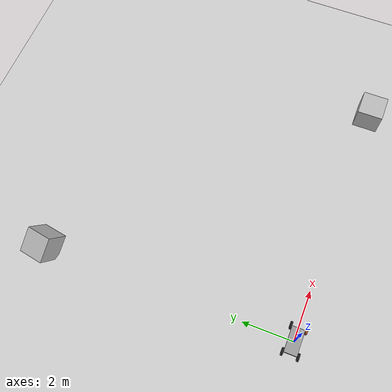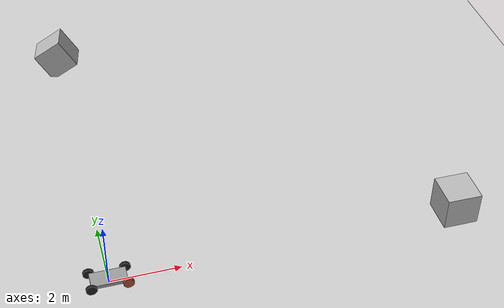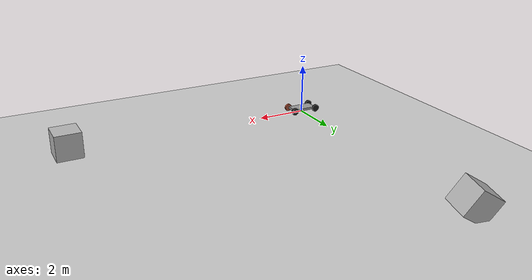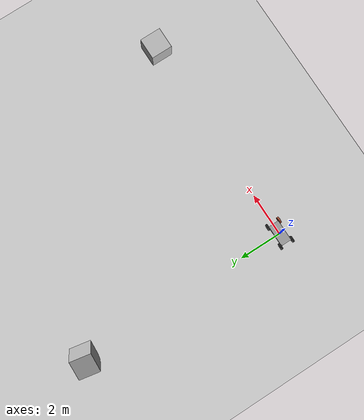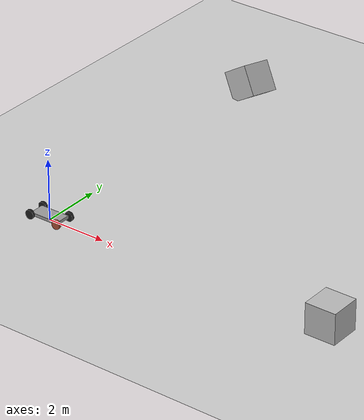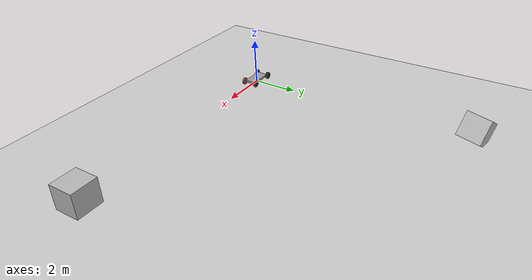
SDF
<?xml version="1.0"?>
<sdf version="1.4">
  <world name="default">

    <!-- Ground Plane -->
    <include>
      <uri>model://ground_plane</uri>
    </include>

    <include>
      <uri>model://sun</uri>
    </include>

    <model name="box">
      <pose>0 10 0.5 25 12 69</pose>
      <link name="link">
        <collision name="collision">
          <geometry>
            <box>
              <size>1 1 1</size>
            </box>
          </geometry>
        </collision>

        <visual name="visual">
          <geometry>
            <box>
              <size>1 1 1</size>
            </box>
          </geometry>
        </visual>
      </link>

      <plugin name="model_push" filename="build/libmodel_push.so"/>
    </model>

    <model name="box2">
      <pose>10 0 0.5 0 0 0</pose>
      <link name="link">
        <collision name="collision">
          <geometry>
            <box>
              <size>1 1 1</size>
            </box>
          </geometry>
        </collision>

        <visual name="visual">
          <geometry>
            <box>
              <size>1 1 1</size>
            </box>
          </geometry>
        </visual>
      </link>

      <plugin name="model_pull" filename="build/libmodel_pull.so"/>
    </model>

    <model name="cart_front_steer">
        <link name="chassis">
            <pose>0 0 0.15  0 0 0</pose>
            <inertial>
                <pose>0.1 0 0  0 0 0</pose>
                <mass>10</mass>
                <inertia>
                    <ixx>0.21666666666666667</ixx>
                    <iyy>0.8416666666666667</iyy>
                    <izz>1.0416666666666667</izz>
                    <ixy>0</ixy>
                    <ixz>0</ixz>
                    <iyz>0</iyz>
                </inertia>
            </inertial>
            <collision name="collision">
                <geometry>
                    <box>
                        <size>1.0 0.5 0.1</size>
                    </box>
                </geometry>
            </collision>
            <visual name="visual">
                <geometry>
                    <box>
                        <size>1.0 0.5 0.1</size>
                    </box>
                </geometry>
                <material>
                    <script>
                        <uri>file://media/materials/scripts/gazebo.material</uri>
                        <name>Gazebo/Grey</name>
                    </script>
                </material>
            </visual>
        </link>

        <link name="wheel_front_left">
            <pose>0.5 0.298 0.15  -1.5707963267948966 -0.08726646259971647 0</pose>
            <inertial>
                <mass>0.5</mass>
                <inertia>
                    <ixx>0.0030791666666666667</ixx>
                    <iyy>0.0030791666666666667</iyy>
                    <izz>0.005625</izz>
                    <ixy>0</ixy>
                    <ixz>0</ixz>
                    <iyz>0</iyz>
                </inertia>
            </inertial>
            <collision name="collision">
                <geometry>
                    <cylinder>
                        <radius>0.15</radius>
                        <length>0.08</length>
                    </cylinder>
                </geometry>
            </collision>
            <visual name="visual">
                <geometry>
                    <cylinder>
                        <radius>0.15</radius>
                        <length>0.08</length>
                    </cylinder>
                </geometry>
                <material>
                    <script>
                        <uri>file://media/materials/scripts/gazebo.material</uri>
                        <name>Gazebo/Black</name>
                    </script>
                </material>
            </visual>
        </link>

        <joint name="wheel_front_left_steer_spin" type="universal">
            <parent>chassis</parent>
            <child>wheel_front_left</child>
            <axis>
                <xyz>0 1 0</xyz>
                <limit>
                    <lower>-0.6108652381980153</lower>
                    <upper>0.6108652381980153</upper>
                </limit>
            </axis>
            <axis2>
                <xyz>0 0 1</xyz>
            </axis2>
        </joint>

        <link name="wheel_front_right">
            <pose>0.5 -0.298 0.15  -1.5707963267948966 -0.08726646259971647 0</pose>
            <inertial>
                <mass>0.5</mass>
                <inertia>
                    <ixx>0.0030791666666666667</ixx>
                    <iyy>0.0030791666666666667</iyy>
                    <izz>0.005625</izz>
                    <ixy>0</ixy>
                    <ixz>0</ixz>
                    <iyz>0</iyz>
                </inertia>
            </inertial>
            <collision name="collision">
                <geometry>
                    <cylinder>
                        <radius>0.15</radius>
                        <length>0.08</length>
                    </cylinder>
                </geometry>
            </collision>
            <visual name="visual">
                <geometry>
                    <cylinder>
                        <radius>0.15</radius>
                        <length>0.08</length>
                    </cylinder>
                </geometry>
                <material>
                    <script>
                        <uri>file://media/materials/scripts/gazebo.material</uri>
                        <name>Gazebo/Bricks</name>
                    </script>
                </material>
            </visual>
        </link>

        <joint name="wheel_front_right_steer_spin" type="universal">
            <parent>chassis</parent>
            <child>wheel_front_right</child>
            <axis>
                <xyz>0 1 0</xyz>
                <limit>
                    <lower>-0.6108652381980153</lower>
                    <upper>0.6108652381980153</upper>
                </limit>
            </axis>
            <axis2>
                <xyz>0 0 1</xyz>
            </axis2>
        </joint>

        <link name="wheel_rear_left">
            <pose>-0.5 0.298 0.15  -1.5707963267948966 0 0</pose>
            <inertial>
                <mass>0.5</mass>
                <inertia>
                    <ixx>0.0030791666666666667</ixx>
                    <iyy>0.0030791666666666667</iyy>
                    <izz>0.005625</izz>
                    <ixy>0</ixy>
                    <ixz>0</ixz>
                    <iyz>0</iyz>
                </inertia>
            </inertial>
            <collision name="collision">
                <geometry>
                    <cylinder>
                        <radius>0.15</radius>
                        <length>0.08</length>
                    </cylinder>
                </geometry>
            </collision>
            <visual name="visual">
                <geometry>
                    <cylinder>
                        <radius>0.15</radius>
                        <length>0.08</length>
                    </cylinder>
                </geometry>
                <material>
                    <script>
                        <uri>file://media/materials/scripts/gazebo.material</uri>
                        <name>Gazebo/Black</name>
                    </script>
                </material>
            </visual>
        </link>
        <joint name="wheel_rear_left_spin" type="revolute">
            <parent>chassis</parent>
            <child>wheel_rear_left</child>
            <axis>
                <xyz>0 1 0</xyz>
            </axis>
        </joint>

        <link name="wheel_rear_right">
            <pose>-0.5 -0.298 0.15  -1.5707963267948966 0 0</pose>
            <inertial>
                <mass>0.5</mass>
                <inertia>
                    <ixx>0.0030791666666666667</ixx>
                    <iyy>0.0030791666666666667</iyy>
                    <izz>0.005625</izz>
                    <ixy>0</ixy>
                    <ixz>0</ixz>
                    <iyz>0</iyz>
                </inertia>
            </inertial>
            <collision name="collision">
                <geometry>
                    <cylinder>
                        <radius>0.15</radius>
                        <length>0.08</length>
                    </cylinder>
                </geometry>
            </collision>
            <visual name="visual">
                <geometry>
                    <cylinder>
                        <radius>0.15</radius>
                        <length>0.08</length>
                    </cylinder>
                </geometry>
                <material>
                    <script>
                        <uri>file://media/materials/scripts/gazebo.material</uri>
                        <name>Gazebo/Black</name>
                    </script>
                </material>
            </visual>
        </link>
        <joint name="wheel_rear_right_spin" type="revolute">
            <parent>chassis</parent>
            <child>wheel_rear_right</child>
            <axis>
                <xyz>0 1 0</xyz>
            </axis>
        </joint>

        <link name="car_laser">
            <pose>0 0 0.2 0 0 0</pose>
            <inertial>
                <mass>0.1</mass>
            </inertial>
            <visual name="visual">
                <geometry>
                    <mesh>
                        <uri>model://hokuyo/meshes/hokuyo.dae</uri>
                    </mesh>
                </geometry>
            </visual>
            <collision name="collision-base">
                <pose>0 0 -0.0145 0 0 0</pose>
                <geometry>
                    <box>
                        <size>0.05 0.05 0.041</size>
                    </box>
                </geometry>
            </collision>
            <collision name="collision-top">
                <pose>0 0 0.0205 0 0 0</pose>
                <geometry>
                    <cylinder>
                        <radius>0.021</radius>
                        <length>0.029</length>
                    </cylinder>
                </geometry>
            </collision>
            <sensor name="laser" type="ray">
                <pose>0.01 0 0.0175 0 -0 0</pose>
                <ray>
                    <scan>
                        <horizontal>
                            <samples>640</samples>
                            <resolution>1</resolution>
                            <min_angle>-2.26889</min_angle>
                            <max_angle>2.268899</max_angle>
                        </horizontal>
                    </scan>
                    <range>
                        <min>0.08</min>
                        <max>10</max>
                        <resolution>0.01</resolution>
                    </range>
                </ray>
                <plugin name="laser_car" filename="build/liblaser_car.so" />
                <always_on>1</always_on>
                <update_rate>30</update_rate>
                <visualize>true</visualize>
            </sensor>
        </link>
        <joint name="car_laser_joint" type="revolute">
            <child>car_laser</child>
            <parent>chassis</parent>
            <axis>
                <xyz>0 0 1</xyz>
                <limit>
                    <upper>0</upper>
                    <lower>0</lower>
                </limit>
            </axis>
        </joint>

        <plugin name="model_car" filename="build/libmodel_car.so"/>
    </model>

  </world>
</sdf>
